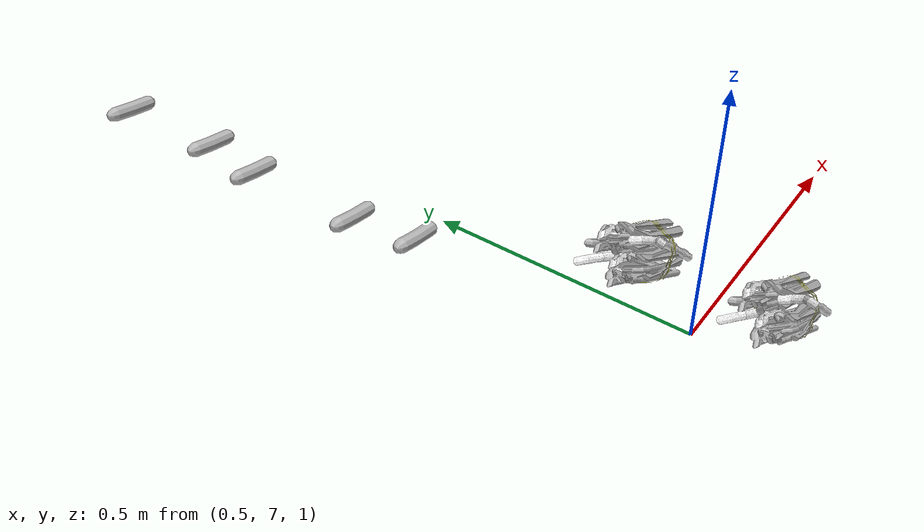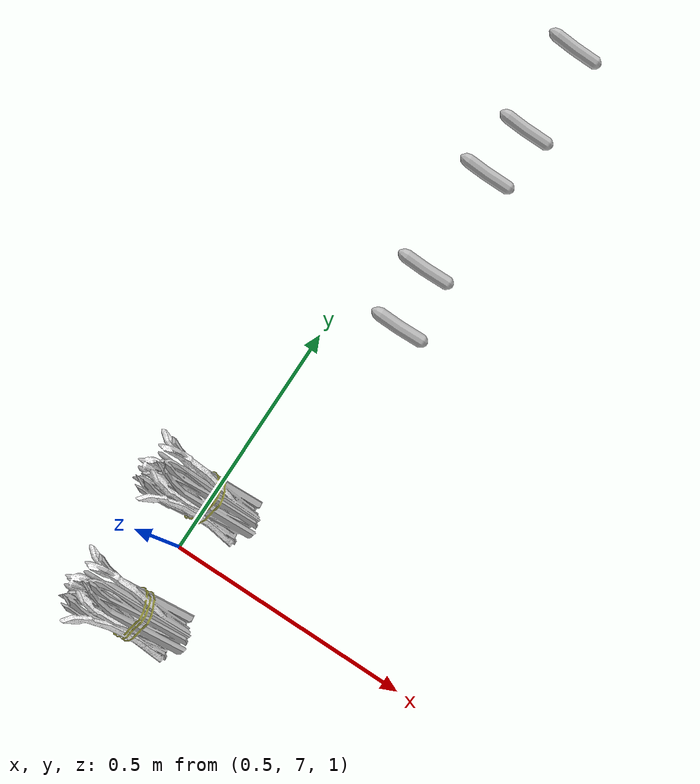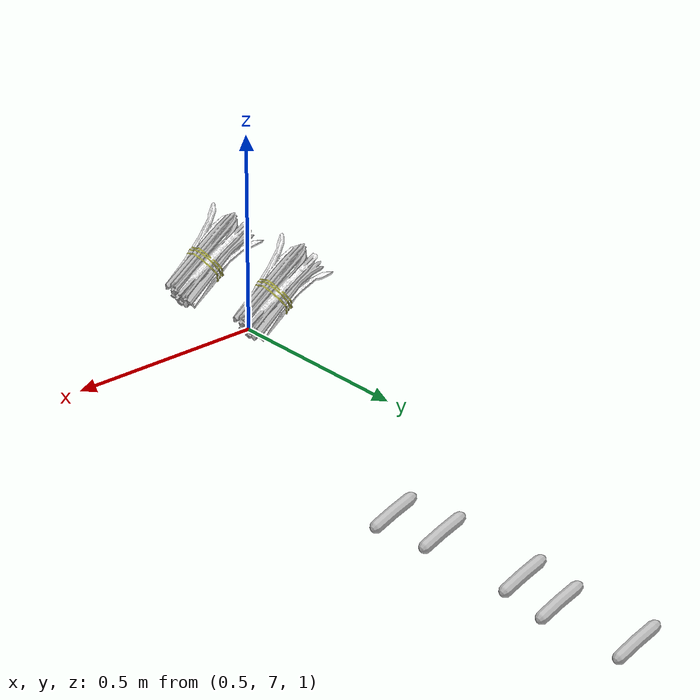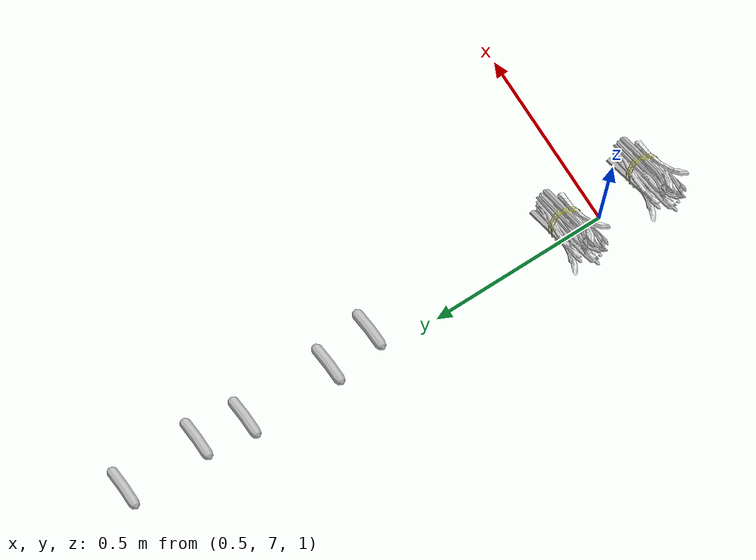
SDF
<sdf version="1.6">
 <world name="default">
  <model name="sparragus_clone_0">
   <link name="link_1">
    <inertial>
     <mass>1</mass>
     <inertia>
      <ixx>0.166667</ixx>
      <ixy>0</ixy>
      <ixz>0</ixz>
      <iyy>0.166667</iyy>
      <iyz>0</iyz>
      <izz>0.166667</izz>
     </inertia>
    </inertial>
    <visual name="visual">
     <geometry><mesh><uri>model://asparagus/meshes/asparagus.dae</uri><scale>1 1 1</scale></mesh></geometry>
    </visual>
    <collision name="collision">
     <geometry><mesh><uri>model://asparagus/meshes/asparagus.dae</uri><scale>1 1 1</scale></mesh></geometry>
     <surface>
      <friction>
       <ode><mu>1</mu><mu2>1</mu2><fdir1>0 0 0</fdir1><slip1>0</slip1><slip2>0</slip2></ode>
       <torsional>
        <coefficient>1</coefficient>
        <patch_radius>0</patch_radius>
        <surface_radius>0</surface_radius>
        <use_patch_radius>1</use_patch_radius>
        <ode><slip>0</slip></ode>
       </torsional>
      </friction>
      <bounce><restitution_coefficient>0</restitution_coefficient><threshold>1e+06</threshold></bounce>
      <contact>
       <collide_without_contact>0</collide_without_contact>
       <collide_without_contact_bitmask>1</collide_without_contact_bitmask>
       <collide_bitmask>1</collide_bitmask>
       <ode>
        <soft_cfm>0</soft_cfm>
        <soft_erp>0.2</soft_erp>
        <kp>1e+13</kp>
        <kd>1</kd>
        <max_vel>0.01</max_vel>
        <min_depth>0</min_depth>
       </ode>
       <bullet>
        <split_impulse>1</split_impulse>
        <split_impulse_penetration_threshold>-0.01</split_impulse_penetration_threshold>
        <soft_cfm>0</soft_cfm>
        <soft_erp>0.2</soft_erp>
        <kp>1e+13</kp>
        <kd>1</kd>
       </bullet>
      </contact>
     </surface>
    </collision>
   </link>
   <static>1</static>
   <pose>0.607439 6.85697 1.06866 0 -0.966891 0</pose>
  </model>
  <model name="sparragus_clone_1">
   <link name="link_1">
    <inertial>
     <mass>1</mass>
     <inertia>
      <ixx>0.166667</ixx>
      <ixy>0</ixy>
      <ixz>0</ixz>
      <iyy>0.166667</iyy>
      <iyz>0</iyz>
      <izz>0.166667</izz>
     </inertia>
    </inertial>
    <visual name="visual">
     <geometry><mesh><uri>model://asparagus/meshes/asparagus.dae</uri><scale>1 1 1</scale></mesh></geometry>
    </visual>
    <collision name="collision">
     <geometry><mesh><uri>model://asparagus/meshes/asparagus.dae</uri><scale>1 1 1</scale></mesh></geometry>
     <surface>
      <friction>
       <ode><mu>1</mu><mu2>1</mu2><fdir1>0 0 0</fdir1><slip1>0</slip1><slip2>0</slip2></ode>
       <torsional>
        <coefficient>1</coefficient>
        <patch_radius>0</patch_radius>
        <surface_radius>0</surface_radius>
        <use_patch_radius>1</use_patch_radius>
        <ode><slip>0</slip></ode>
       </torsional>
      </friction>
      <bounce><restitution_coefficient>0</restitution_coefficient><threshold>1e+06</threshold></bounce>
      <contact>
       <collide_without_contact>0</collide_without_contact>
       <collide_without_contact_bitmask>1</collide_without_contact_bitmask>
       <collide_bitmask>1</collide_bitmask>
       <ode>
        <soft_cfm>0</soft_cfm>
        <soft_erp>0.2</soft_erp>
        <kp>1e+13</kp>
        <kd>1</kd>
        <max_vel>0.01</max_vel>
        <min_depth>0</min_depth>
       </ode>
       <bullet>
        <split_impulse>1</split_impulse>
        <split_impulse_penetration_threshold>-0.01</split_impulse_penetration_threshold>
        <soft_cfm>0</soft_cfm>
        <soft_erp>0.2</soft_erp>
        <kp>1e+13</kp>
        <kd>1</kd>
       </bullet>
      </contact>
     </surface>
    </collision>
   </link>
   <static>1</static>
   <pose>0.597719 7.10094 1.06866 0 -0.966891 0</pose>
  </model>
  <model name="cucumber_clone_11_clone_11_clone_0">
   <link name="link_0">
    <inertial>
     <mass>1</mass>
     <inertia>
      <ixx>0.166667</ixx>
      <ixy>0</ixy>
      <ixz>0</ixz>
      <iyy>0.166667</iyy>
      <iyz>0</iyz>
      <izz>0.166667</izz>
     </inertia>
    </inertial>
    <visual name="visual">
     <geometry><mesh><uri>model://cucumber/meshes/cucumber.dae</uri><scale>1 1 1</scale></mesh></geometry>
     <cast_shadows>0</cast_shadows>
    </visual>
    <collision name="collision">
     <geometry><mesh><uri>model://cucumber/meshes/cucumber.dae</uri><scale>1 1 1</scale></mesh></geometry>
     <surface>
      <friction>
       <ode><mu>1</mu><mu2>1</mu2><fdir1>0 0 0</fdir1><slip1>0</slip1><slip2>0</slip2></ode>
       <torsional>
        <coefficient>1</coefficient>
        <patch_radius>0</patch_radius>
        <surface_radius>0</surface_radius>
        <use_patch_radius>1</use_patch_radius>
        <ode><slip>0</slip></ode>
       </torsional>
      </friction>
      <bounce><restitution_coefficient>0</restitution_coefficient><threshold>1e+06</threshold></bounce>
      <contact>
       <collide_without_contact>0</collide_without_contact>
       <collide_without_contact_bitmask>1</collide_without_contact_bitmask>
       <collide_bitmask>1</collide_bitmask>
       <ode>
        <soft_cfm>0</soft_cfm>
        <soft_erp>0.2</soft_erp>
        <kp>1e+13</kp>
        <kd>1</kd>
        <max_vel>0.01</max_vel>
        <min_depth>0</min_depth>
       </ode>
       <bullet>
        <split_impulse>1</split_impulse>
        <split_impulse_penetration_threshold>-0.01</split_impulse_penetration_threshold>
        <soft_cfm>0</soft_cfm>
        <soft_erp>0.2</soft_erp>
        <kp>1e+13</kp>
        <kd>1</kd>
       </bullet>
      </contact>
     </surface>
    </collision>
   </link>
   <static>1</static>
   <pose>0.623926 7.62638 0.793846 0.305162 0 1.61482</pose>
  </model>
  <model name="cucumber_clone_11_clone_11_clone_1">
   <link name="link_0">
    <inertial>
     <mass>1</mass>
     <inertia>
      <ixx>0.166667</ixx>
      <ixy>0</ixy>
      <ixz>0</ixz>
      <iyy>0.166667</iyy>
      <iyz>0</iyz>
      <izz>0.166667</izz>
     </inertia>
    </inertial>
    <visual name="visual">
     <geometry><mesh><uri>model://cucumber/meshes/cucumber.dae</uri><scale>1 1 1</scale></mesh></geometry>
     <cast_shadows>0</cast_shadows>
    </visual>
    <collision name="collision">
     <geometry><mesh><uri>model://cucumber/meshes/cucumber.dae</uri><scale>1 1 1</scale></mesh></geometry>
     <surface>
      <friction>
       <ode><mu>1</mu><mu2>1</mu2><fdir1>0 0 0</fdir1><slip1>0</slip1><slip2>0</slip2></ode>
       <torsional>
        <coefficient>1</coefficient>
        <patch_radius>0</patch_radius>
        <surface_radius>0</surface_radius>
        <use_patch_radius>1</use_patch_radius>
        <ode><slip>0</slip></ode>
       </torsional>
      </friction>
      <bounce><restitution_coefficient>0</restitution_coefficient><threshold>1e+06</threshold></bounce>
      <contact>
       <collide_without_contact>0</collide_without_contact>
       <collide_without_contact_bitmask>1</collide_without_contact_bitmask>
       <collide_bitmask>1</collide_bitmask>
       <ode>
        <soft_cfm>0</soft_cfm>
        <soft_erp>0.2</soft_erp>
        <kp>1e+13</kp>
        <kd>1</kd>
        <max_vel>0.01</max_vel>
        <min_depth>0</min_depth>
       </ode>
       <bullet>
        <split_impulse>1</split_impulse>
        <split_impulse_penetration_threshold>-0.01</split_impulse_penetration_threshold>
        <soft_cfm>0</soft_cfm>
        <soft_erp>0.2</soft_erp>
        <kp>1e+13</kp>
        <kd>1</kd>
       </bullet>
      </contact>
     </surface>
    </collision>
   </link>
   <static>1</static>
   <pose>0.602558 7.76761 0.793846 0.305162 0 1.61482</pose>
  </model>
  <model name="cucumber_clone_11_clone_11_clone_3">
   <link name="link_0">
    <inertial>
     <mass>1</mass>
     <inertia>
      <ixx>0.166667</ixx>
      <ixy>0</ixy>
      <ixz>0</ixz>
      <iyy>0.166667</iyy>
      <iyz>0</iyz>
      <izz>0.166667</izz>
     </inertia>
    </inertial>
    <visual name="visual">
     <geometry><mesh><uri>model://cucumber/meshes/cucumber.dae</uri><scale>1 1 1</scale></mesh></geometry>
     <cast_shadows>0</cast_shadows>
    </visual>
    <collision name="collision">
     <geometry><mesh><uri>model://cucumber/meshes/cucumber.dae</uri><scale>1 1 1</scale></mesh></geometry>
     <surface>
      <friction>
       <ode><mu>1</mu><mu2>1</mu2><fdir1>0 0 0</fdir1><slip1>0</slip1><slip2>0</slip2></ode>
       <torsional>
        <coefficient>1</coefficient>
        <patch_radius>0</patch_radius>
        <surface_radius>0</surface_radius>
        <use_patch_radius>1</use_patch_radius>
        <ode><slip>0</slip></ode>
       </torsional>
      </friction>
      <bounce><restitution_coefficient>0</restitution_coefficient><threshold>1e+06</threshold></bounce>
      <contact>
       <collide_without_contact>0</collide_without_contact>
       <collide_without_contact_bitmask>1</collide_without_contact_bitmask>
       <collide_bitmask>1</collide_bitmask>
       <ode>
        <soft_cfm>0</soft_cfm>
        <soft_erp>0.2</soft_erp>
        <kp>1e+13</kp>
        <kd>1</kd>
        <max_vel>0.01</max_vel>
        <min_depth>0</min_depth>
       </ode>
       <bullet>
        <split_impulse>1</split_impulse>
        <split_impulse_penetration_threshold>-0.01</split_impulse_penetration_threshold>
        <soft_cfm>0</soft_cfm>
        <soft_erp>0.2</soft_erp>
        <kp>1e+13</kp>
        <kd>1</kd>
       </bullet>
      </contact>
     </surface>
    </collision>
   </link>
   <static>1</static>
   <pose>0.600898 8.02847 0.793846 0.305162 0 1.61482</pose>
  </model>
  <model name="cucumber_clone_11_clone_11_clone_4">
   <link name="link_0">
    <inertial>
     <mass>1</mass>
     <inertia>
      <ixx>0.166667</ixx>
      <ixy>0</ixy>
      <ixz>0</ixz>
      <iyy>0.166667</iyy>
      <iyz>0</iyz>
      <izz>0.166667</izz>
     </inertia>
    </inertial>
    <visual name="visual">
     <geometry><mesh><uri>model://cucumber/meshes/cucumber.dae</uri><scale>1 1 1</scale></mesh></geometry>
     <cast_shadows>0</cast_shadows>
    </visual>
    <collision name="collision">
     <geometry><mesh><uri>model://cucumber/meshes/cucumber.dae</uri><scale>1 1 1</scale></mesh></geometry>
     <surface>
      <friction>
       <ode><mu>1</mu><mu2>1</mu2><fdir1>0 0 0</fdir1><slip1>0</slip1><slip2>0</slip2></ode>
       <torsional>
        <coefficient>1</coefficient>
        <patch_radius>0</patch_radius>
        <surface_radius>0</surface_radius>
        <use_patch_radius>1</use_patch_radius>
        <ode><slip>0</slip></ode>
       </torsional>
      </friction>
      <bounce><restitution_coefficient>0</restitution_coefficient><threshold>1e+06</threshold></bounce>
      <contact>
       <collide_without_contact>0</collide_without_contact>
       <collide_without_contact_bitmask>1</collide_without_contact_bitmask>
       <collide_bitmask>1</collide_bitmask>
       <ode>
        <soft_cfm>0</soft_cfm>
        <soft_erp>0.2</soft_erp>
        <kp>1e+13</kp>
        <kd>1</kd>
        <max_vel>0.01</max_vel>
        <min_depth>0</min_depth>
       </ode>
       <bullet>
        <split_impulse>1</split_impulse>
        <split_impulse_penetration_threshold>-0.01</split_impulse_penetration_threshold>
        <soft_cfm>0</soft_cfm>
        <soft_erp>0.2</soft_erp>
        <kp>1e+13</kp>
        <kd>1</kd>
       </bullet>
      </contact>
     </surface>
    </collision>
   </link>
   <static>1</static>
   <pose>0.620238 8.16496 0.793846 0.305162 0 1.61482</pose>
  </model>
  <model name="cucumber_clone_11_clone_11_clone_6">
   <link name="link_0">
    <inertial>
     <mass>1</mass>
     <inertia>
      <ixx>0.166667</ixx>
      <ixy>0</ixy>
      <ixz>0</ixz>
      <iyy>0.166667</iyy>
      <iyz>0</iyz>
      <izz>0.166667</izz>
     </inertia>
    </inertial>
    <visual name="visual">
     <geometry><mesh><uri>model://cucumber/meshes/cucumber.dae</uri><scale>1 1 1</scale></mesh></geometry>
     <cast_shadows>0</cast_shadows>
    </visual>
    <collision name="collision">
     <geometry><mesh><uri>model://cucumber/meshes/cucumber.dae</uri><scale>1 1 1</scale></mesh></geometry>
     <surface>
      <friction>
       <ode><mu>1</mu><mu2>1</mu2><fdir1>0 0 0</fdir1><slip1>0</slip1><slip2>0</slip2></ode>
       <torsional>
        <coefficient>1</coefficient>
        <patch_radius>0</patch_radius>
        <surface_radius>0</surface_radius>
        <use_patch_radius>1</use_patch_radius>
        <ode><slip>0</slip></ode>
       </torsional>
      </friction>
      <bounce><restitution_coefficient>0</restitution_coefficient><threshold>1e+06</threshold></bounce>
      <contact>
       <collide_without_contact>0</collide_without_contact>
       <collide_without_contact_bitmask>1</collide_without_contact_bitmask>
       <collide_bitmask>1</collide_bitmask>
       <ode>
        <soft_cfm>0</soft_cfm>
        <soft_erp>0.2</soft_erp>
        <kp>1e+13</kp>
        <kd>1</kd>
        <max_vel>0.01</max_vel>
        <min_depth>0</min_depth>
       </ode>
       <bullet>
        <split_impulse>1</split_impulse>
        <split_impulse_penetration_threshold>-0.01</split_impulse_penetration_threshold>
        <soft_cfm>0</soft_cfm>
        <soft_erp>0.2</soft_erp>
        <kp>1e+13</kp>
        <kd>1</kd>
       </bullet>
      </contact>
     </surface>
    </collision>
   </link>
   <static>1</static>
   <pose>0.612252 8.394 0.793846 0.305162 0 1.61482</pose>
  </model>
 </world>
</sdf>
